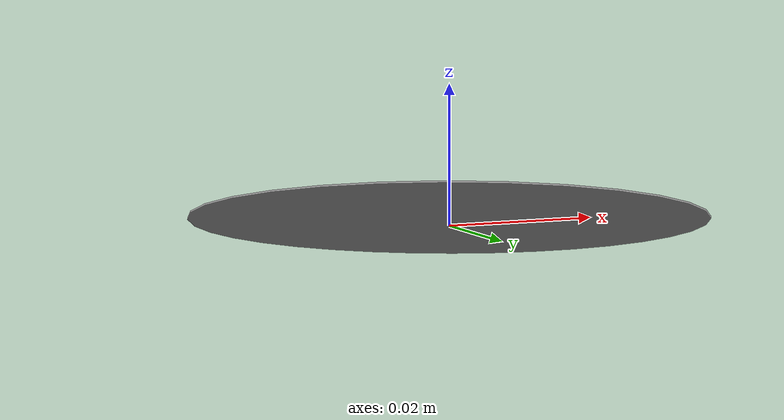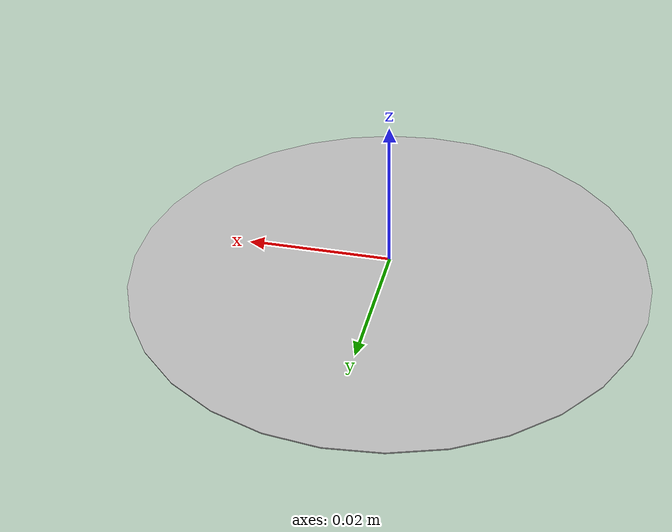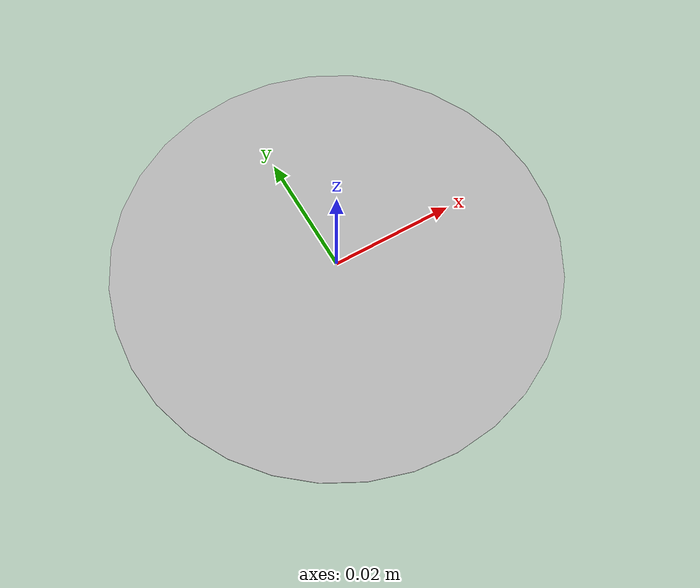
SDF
<?xml version="1.0"?>
<sdf version='1.4'>
    <model name="turn_left">
        <static>1</static>
        <link name="link_1">
            <visual name='visual'>
                <pose frame=''>0 0 0 0 0 0</pose>
                <geometry>
                    <mesh>
                        <uri>model://turn_left/meshes/turn_left.dae</uri>
                    </mesh>
                </geometry>
            </visual>
        </link>
    </model>
</sdf>
